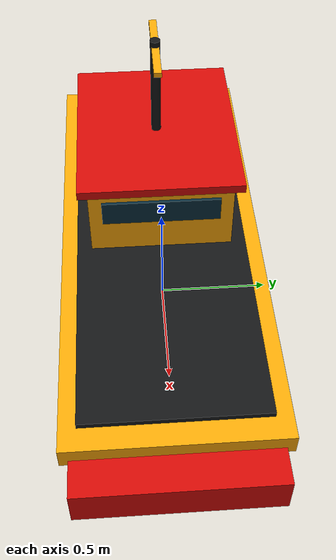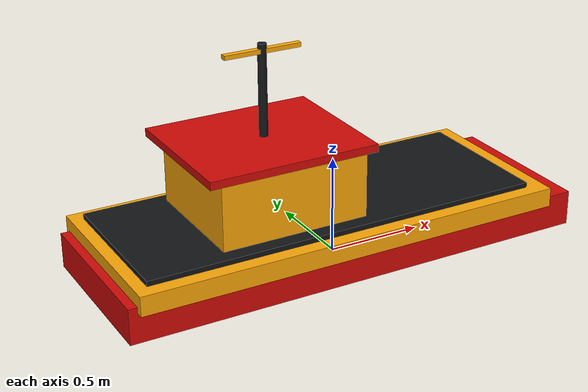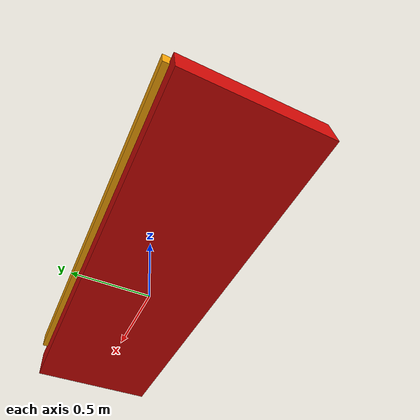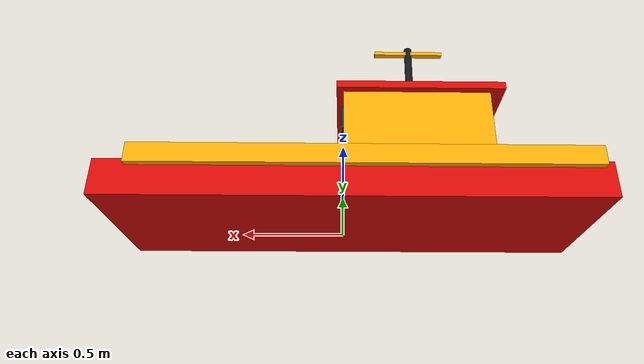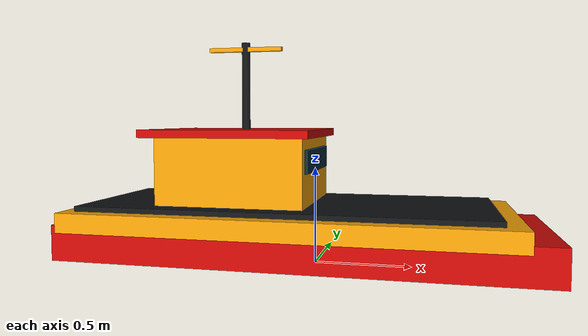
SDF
<?xml version='1.0' encoding='UTF-8'?>
<sdf version="1.10">
  <!-- Unity presentation geometry scale=0.18 -->
  <model name="sim332_friendly_ship">
    <pose>0 0 0.09 0 0 0</pose>
    <link name="hull">
      <gravity>false</gravity>
      <inertial>
        <mass>850</mass>
        <inertia>
          <ixx>1350</ixx>
          <iyy>6900</iyy>
          <izz>7800</izz>
        </inertia>
      </inertial>
      <!-- Geometry mirrors SimulationBootstrap.BuildFriendlyShip exactly. -->
      <collision name="lower_hull_collision">
        <pose>-0.054 0 0.045 0 0 0</pose>
        <geometry>
          <box>
            <size>2.43 0.846 0.18</size>
          </box>
        </geometry>
      </collision>
      <collision name="upper_hull_collision">
        <pose>-0.108 0 0.153 0 0 0</pose>
        <geometry>
          <box>
            <size>2.232 0.918 0.099</size>
          </box>
        </geometry>
      </collision>
      <collision name="cabin_collision">
        <pose>-0.378 0 0.405 0 0 0</pose>
        <geometry>
          <box>
            <size>0.756 0.639 0.342</size>
          </box>
        </geometry>
      </collision>
      <visual name="lower_hull">
        <pose>-0.054 0 0.045 0 0 0</pose>
        <geometry>
          <box>
            <size>2.43 0.846 0.18</size>
          </box>
        </geometry>
        <material>
          <ambient>0.369 0.01575 0.009 1</ambient>
          <diffuse>0.82 0.035 0.02 1</diffuse>
          <specular>0.164 0.164 0.164 1</specular>
        </material>
      </visual>
      <visual name="upper_hull">
        <pose>-0.108 0 0.153 0 0 0</pose>
        <geometry>
          <box>
            <size>2.232 0.918 0.099</size>
          </box>
        </geometry>
        <material>
          <ambient>0.441 0.2925 0.01125 1</ambient>
          <diffuse>0.98 0.65 0.025 1</diffuse>
          <specular>0.12 0.12 0.12 1</specular>
        </material>
      </visual>
      <visual name="main_deck">
        <pose>-0.126 0 0.2124 0 0 0</pose>
        <geometry>
          <box>
            <size>2.07 0.774 0.0324</size>
          </box>
        </geometry>
        <material>
          <ambient>0.03375 0.036 0.03825 1</ambient>
          <diffuse>0.075 0.08 0.085 1</diffuse>
          <specular>0.23 0.23 0.23 1</specular>
        </material>
      </visual>
      <visual name="cabin">
        <pose>-0.378 0 0.405 0 0 0</pose>
        <geometry>
          <box>
            <size>0.756 0.639 0.342</size>
          </box>
        </geometry>
        <material>
          <ambient>0.441 0.2925 0.01125 1</ambient>
          <diffuse>0.98 0.65 0.025 1</diffuse>
          <specular>0.12 0.12 0.12 1</specular>
        </material>
      </visual>
      <visual name="bridge_windows">
        <pose>0.0054 0 0.459 0 0 0</pose>
        <geometry>
          <box>
            <size>0.0144 0.522 0.117</size>
          </box>
        </geometry>
        <material>
          <ambient>0.01125 0.072 0.099 1</ambient>
          <diffuse>0.025 0.16 0.22 1</diffuse>
          <specular>0.604 0.604 0.604 1</specular>
        </material>
      </visual>
      <visual name="roof">
        <pose>-0.396 0 0.594 0 0 0</pose>
        <geometry>
          <box>
            <size>0.864 0.72 0.0396</size>
          </box>
        </geometry>
        <material>
          <ambient>0.369 0.01575 0.009 1</ambient>
          <diffuse>0.82 0.035 0.02 1</diffuse>
          <specular>0.164 0.164 0.164 1</specular>
        </material>
      </visual>
      <visual name="mast">
        <pose>-0.378 0 0.837 0 0 0</pose>
        <geometry>
          <cylinder>
            <radius>0.0216</radius>
            <length>0.468</length>
          </cylinder>
        </geometry>
        <material>
          <ambient>0.03375 0.036 0.03825 1</ambient>
          <diffuse>0.075 0.08 0.085 1</diffuse>
          <specular>0.23 0.23 0.23 1</specular>
        </material>
      </visual>
      <visual name="radar">
        <pose>-0.378 0 1.035 0 0 0</pose>
        <geometry>
          <box>
            <size>0.396 0.0324 0.0216</size>
          </box>
        </geometry>
        <material>
          <ambient>0.441 0.2925 0.01125 1</ambient>
          <diffuse>0.98 0.65 0.025 1</diffuse>
          <specular>0.12 0.12 0.12 1</specular>
        </material>
      </visual>
      <visual name="port_stripe">
        <pose>-0.036 0.4356 0.1656 0 0 0</pose>
        <geometry>
          <box>
            <size>1.764 0.0144 0.063</size>
          </box>
        </geometry>
        <material>
          <ambient>0.441 0.2925 0.01125 1</ambient>
          <diffuse>0.98 0.65 0.025 1</diffuse>
        </material>
      </visual>
      <visual name="starboard_stripe">
        <pose>-0.036 -0.4356 0.1656 0 0 0</pose>
        <geometry>
          <box>
            <size>1.764 0.0144 0.063</size>
          </box>
        </geometry>
        <material>
          <ambient>0.441 0.2925 0.01125 1</ambient>
          <diffuse>0.98 0.65 0.025 1</diffuse>
        </material>
      </visual>
    </link>
    <plugin filename="libBoatWaveFollower.so" name="gz::sim::systems::BoatWaveFollower">
      <mean_z>0.1404</mean_z>
      <heave_amplitude>0.009</heave_amplitude>
      <roll_amplitude>0.018</roll_amplitude>
      <pitch_amplitude>0.015</pitch_amplitude>
      <primary_frequency>0.9</primary_frequency>
      <secondary_frequency>1.35</secondary_frequency>
      <wave_number_x>0.24</wave_number_x>
      <wave_number_y>0.17</wave_number_y>
      <velocity_topic>cmd_vel</velocity_topic>
    </plugin>
  </model>
</sdf>
